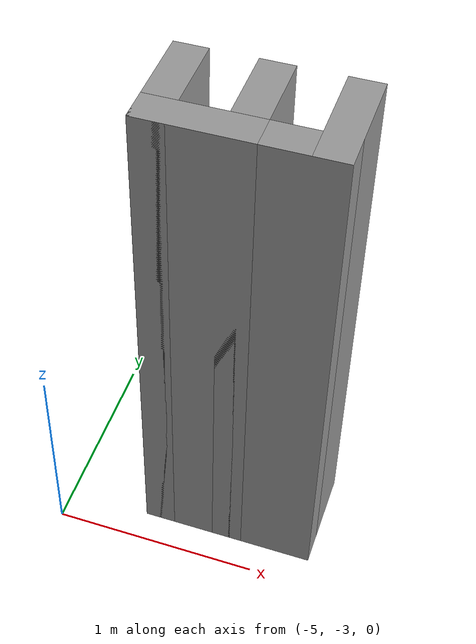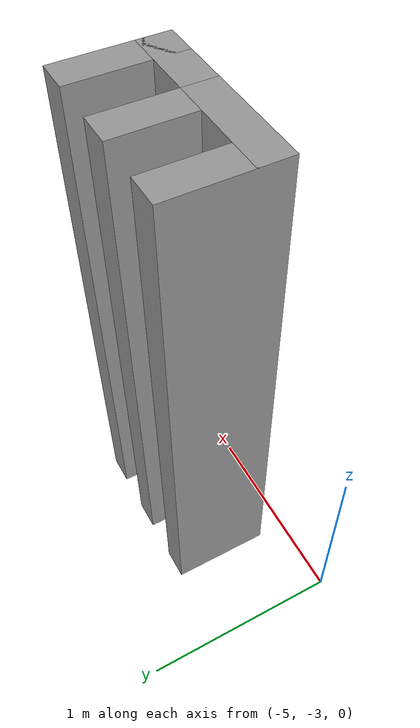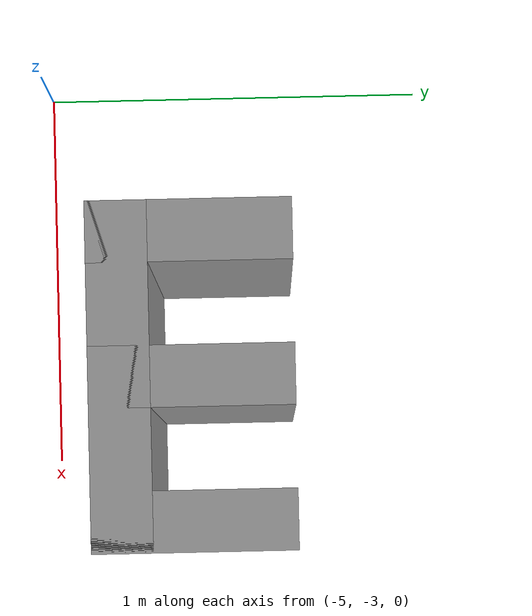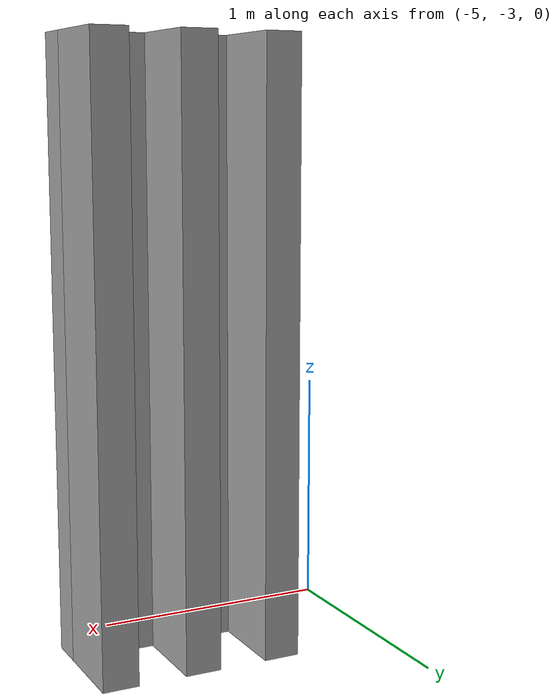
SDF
<?xml version='1.0'?>
<sdf version='1.6'>
  <model name='so3'>
    <pose frame=''>-4.17 -2.605 0 0 -0 0</pose>
    <link name='Wall_10'>
      <collision name='Wall_10_Collision'>
        <geometry>
          <box>
            <size>0.5 0.15 2.5</size>
          </box>
        </geometry>
        <pose frame=''>0 0 1.25 0 -0 0</pose>
      </collision>
      <visual name='Wall_10_Visual'>
        <pose frame=''>0 0 1.25 0 -0 0</pose>
        <geometry>
          <box>
            <size>0.5 0.15 2.5</size>
          </box>
        </geometry>
        <material>
          <script>
            <uri>file://media/materials/scripts/gazebo.material</uri>
            <name>Gazebo/Grey</name>
          </script>
          <ambient>1 1 1 1</ambient>
        </material>
        <meta>
          <layer>0</layer>
        </meta>
      </visual>
      <pose frame=''>-0.35 0 0 0 -0 -1.5708</pose>
    </link>
    <link name='Wall_12'>
      <collision name='Wall_12_Collision'>
        <geometry>
          <box>
            <size>0.5 0.15 2.5</size>
          </box>
        </geometry>
        <pose frame=''>0 0 1.25 0 -0 0</pose>
      </collision>
      <visual name='Wall_12_Visual'>
        <pose frame=''>0 0 1.25 0 -0 0</pose>
        <geometry>
          <box>
            <size>0.5 0.15 2.5</size>
          </box>
        </geometry>
        <material>
          <script>
            <uri>file://media/materials/scripts/gazebo.material</uri>
            <name>Gazebo/Grey</name>
          </script>
          <ambient>1 1 1 1</ambient>
        </material>
        <meta>
          <layer>0</layer>
        </meta>
      </visual>
      <pose frame=''>-0.175 -0.175 0 0 -0 0</pose>
    </link>
    <link name='Wall_3'>
      <collision name='Wall_3_Collision'>
        <geometry>
          <box>
            <size>0.5 0.15 2.5</size>
          </box>
        </geometry>
        <pose frame=''>0 0 1.25 0 -0 0</pose>
      </collision>
      <visual name='Wall_3_Visual'>
        <pose frame=''>0 0 1.25 0 -0 0</pose>
        <geometry>
          <box>
            <size>0.5 0.15 2.5</size>
          </box>
        </geometry>
        <material>
          <script>
            <uri>file://media/materials/scripts/gazebo.material</uri>
            <name>Gazebo/Grey</name>
          </script>
          <ambient>1 1 1 1</ambient>
        </material>
        <meta>
          <layer>0</layer>
        </meta>
      </visual>
      <pose frame=''>0.35 0 0 0 -0 -1.5708</pose>
    </link>
    <link name='Wall_4'>
      <collision name='Wall_4_Collision'>
        <geometry>
          <box>
            <size>0.5 0.15 2.5</size>
          </box>
        </geometry>
        <pose frame=''>0 0 1.25 0 -0 0</pose>
      </collision>
      <visual name='Wall_4_Visual'>
        <pose frame=''>0 0 1.25 0 -0 0</pose>
        <geometry>
          <box>
            <size>0.5 0.15 2.5</size>
          </box>
        </geometry>
        <material>
          <script>
            <uri>file://media/materials/scripts/gazebo.material</uri>
            <name>Gazebo/Grey</name>
          </script>
          <ambient>1 1 1 1</ambient>
        </material>
        <meta>
          <layer>0</layer>
        </meta>
      </visual>
      <pose frame=''>0.175 -0.175 0 0 -0 3.14159</pose>
    </link>
    <link name='Wall_8'>
      <collision name='Wall_8_Collision'>
        <geometry>
          <box>
            <size>0.5 0.15 2.5</size>
          </box>
        </geometry>
        <pose frame=''>0 0 1.25 0 -0 0</pose>
      </collision>
      <visual name='Wall_8_Visual'>
        <pose frame=''>0 0 1.25 0 -0 0</pose>
        <geometry>
          <box>
            <size>0.5 0.15 2.5</size>
          </box>
        </geometry>
        <material>
          <script>
            <uri>file://media/materials/scripts/gazebo.material</uri>
            <name>Gazebo/Grey</name>
          </script>
          <ambient>1 1 1 1</ambient>
        </material>
        <meta>
          <layer>0</layer>
        </meta>
      </visual>
      <pose frame=''>-0 0 0 0 -0 1.5708</pose>
    </link>
    <static>1</static>
  </model>
</sdf>
